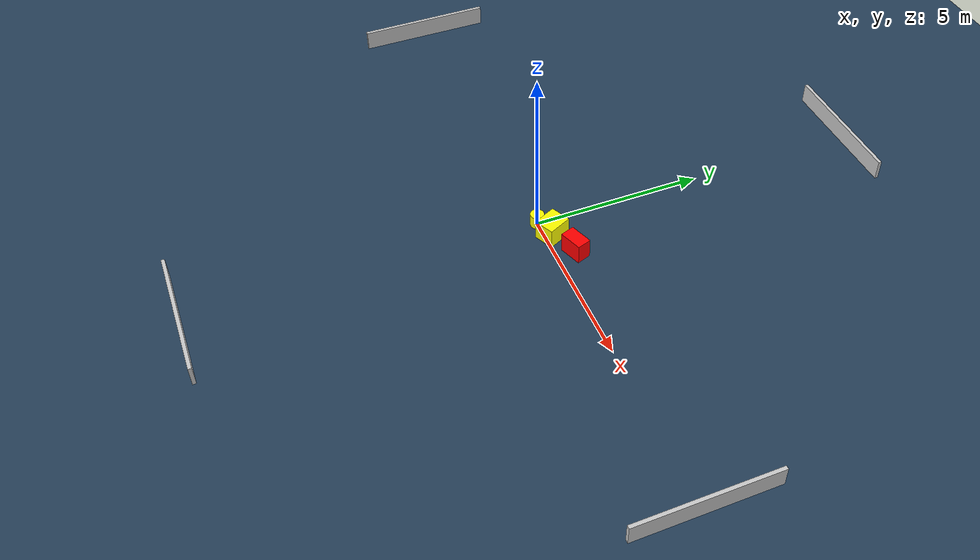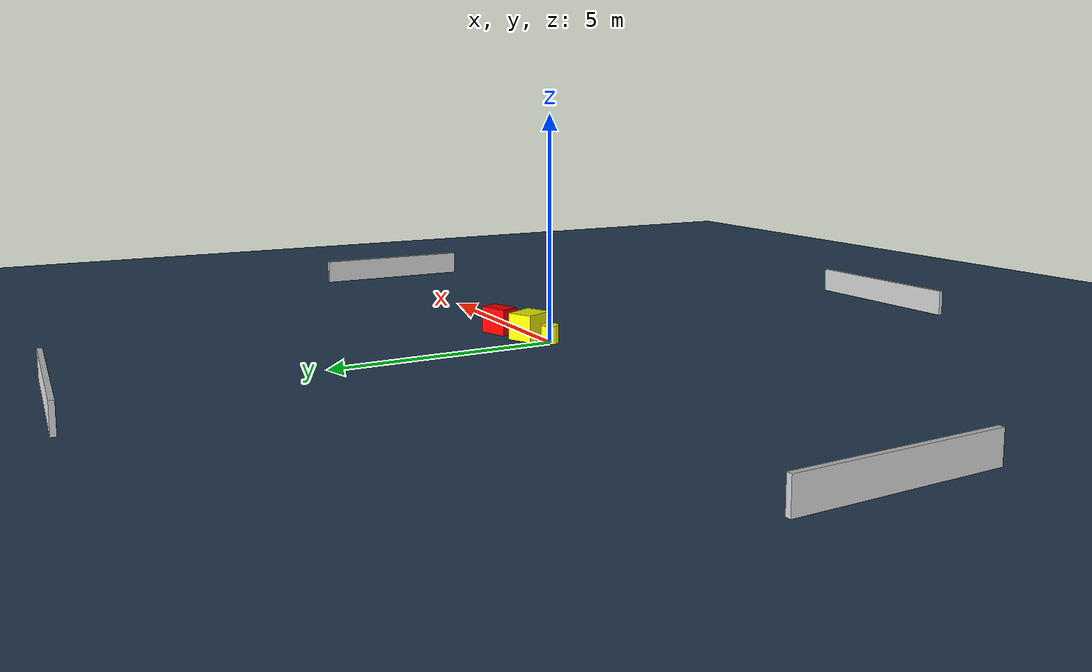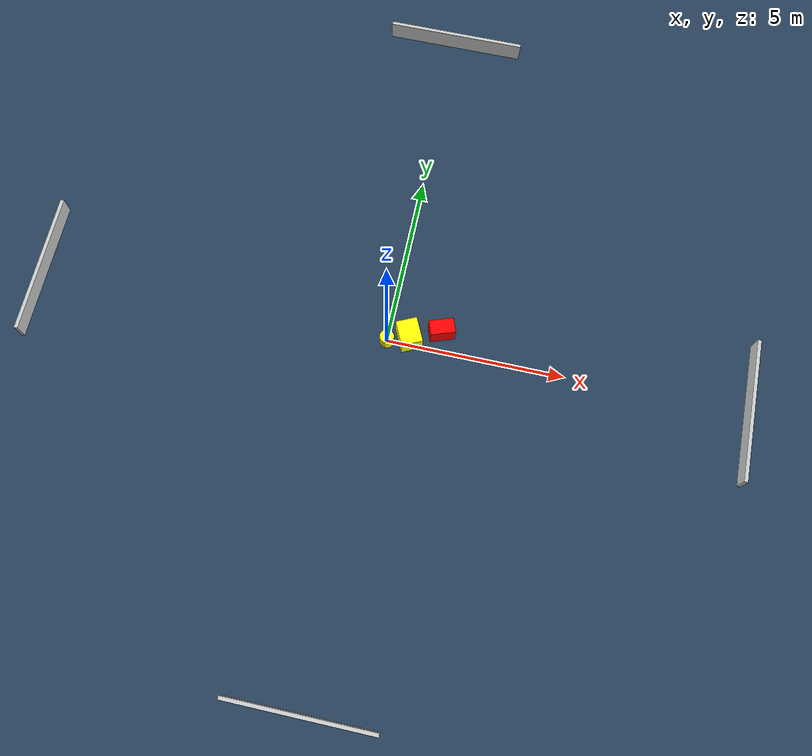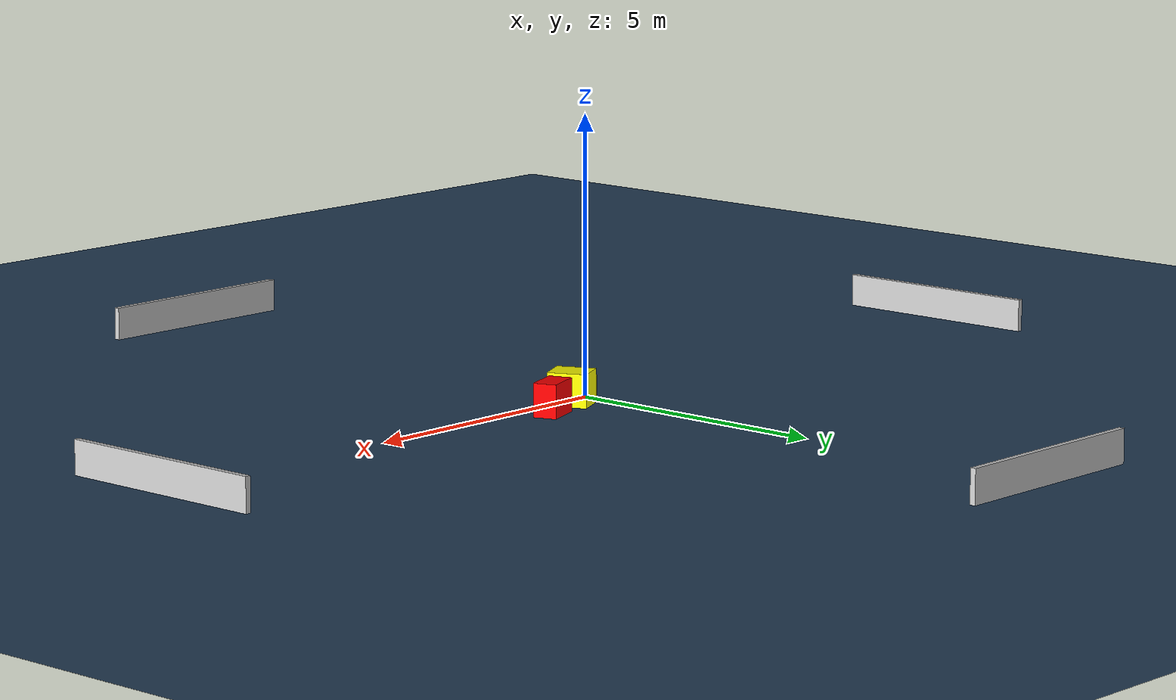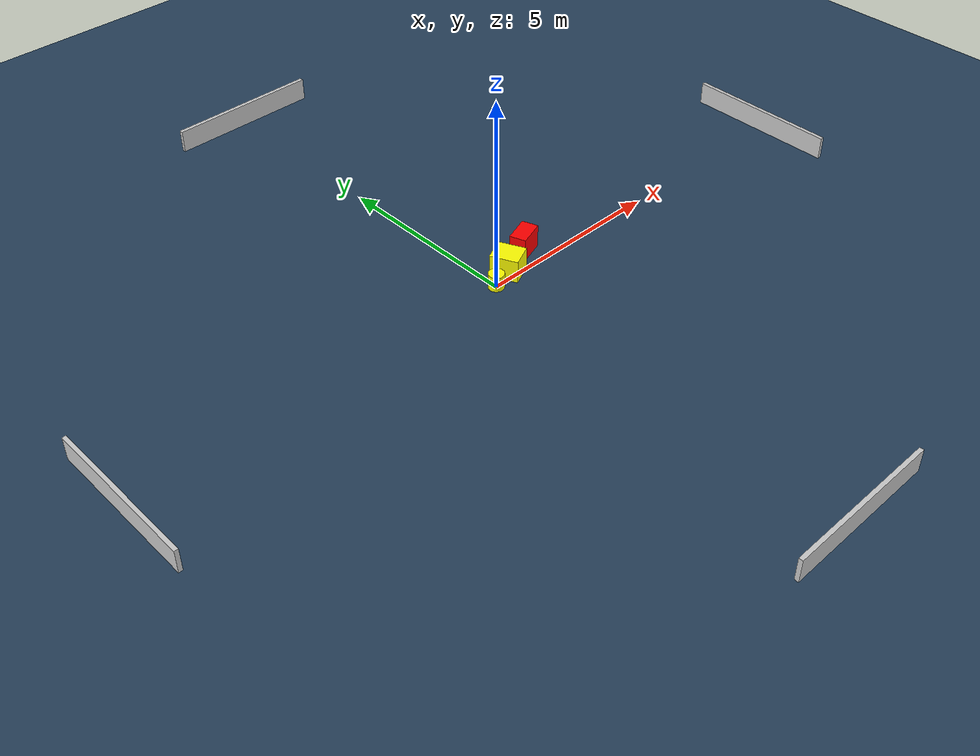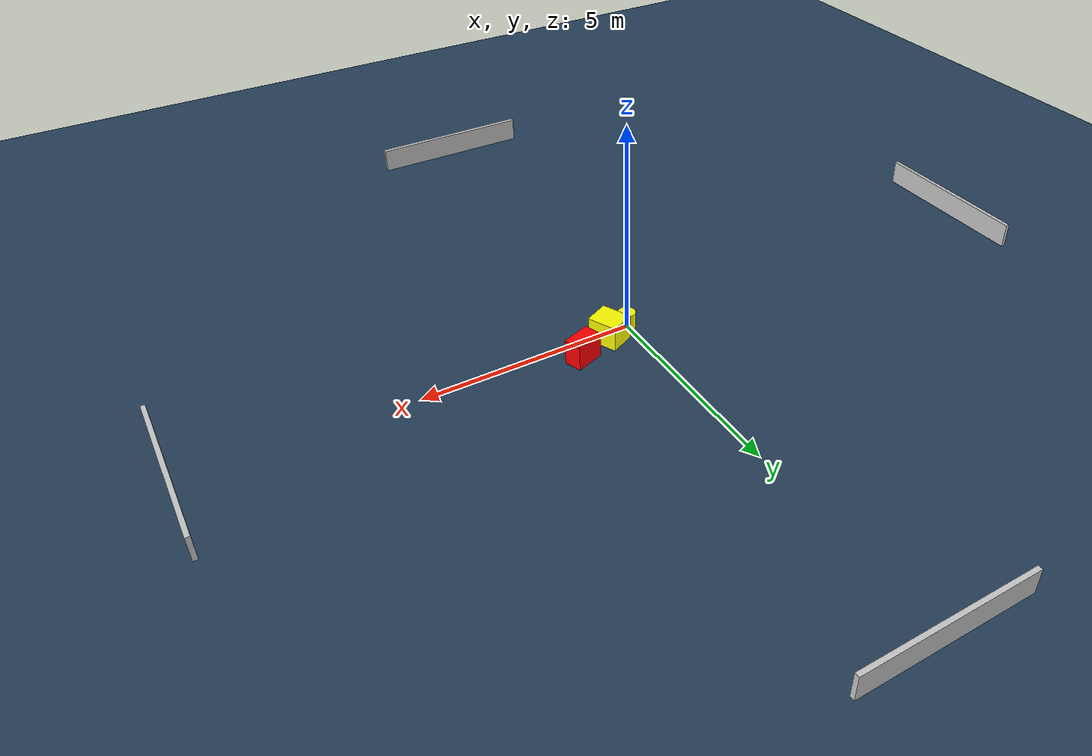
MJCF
<?xml version="1.0" ?>
<mujoco model="generated_environment">
  <option timestep="0.01" integrator="RK4" cone="elliptic"/>
  <default>
    <geom density="1"/>
  </default>
  <asset>
    <texture builtin="gradient" height="3072" name="skybox" rgb1="0.3 0.5 0.7" rgb2="0 0 0" type="skybox" width="512"/>
    <texture builtin="checker" height="300" name="groundplane" rgb1="0.2 0.3 0.4" rgb2="0.1 0.2 0.3" type="2d" width="300"/>
    <material name="groundplane" reflectance="0.2" texrepeat="5 5" texture="groundplane"/>
  </asset>
  <worldbody>
    <light dir="0 0 -1" directional="true" pos="0 0 1.5"/>
    <geom condim="3" friction="0.5 0.005 0.001" material="groundplane" name="floor" pos="0 0 0" size="0 0 0.05" type="plane"/>
    <body name="walls">
      <geom name="wall_1" condim="4" pos="-10.0 0.0 0.3" rgba="0.800000011920929 0.800000011920929 0.800000011920929 1.0" size="0.05 2.0 0.3" type="box"/>
      <geom name="wall_2" condim="4" pos="10.0 0.0 0.3" rgba="0.800000011920929 0.800000011920929 0.800000011920929 1.0" size="0.05 2.0 0.3" type="box"/>
      <geom name="wall_3" condim="4" pos="0.0 -10.0 0.3" rgba="0.800000011920929 0.800000011920929 0.800000011920929 1.0" size="2.0 0.05 0.3" type="box"/>
      <geom name="wall_4" condim="4" pos="0.0 10.0 0.3" rgba="0.800000011920929 0.800000011920929 0.800000011920929 1.0" size="2.0 0.05 0.3" type="box"/>
    </body>
    <body name="robot">
      <joint name="joint_x" type="slide" pos="0 0 0" axis="1 0 0"/>
      <joint name="joint_y" type="slide" pos="0 0 0" axis="0 1 0"/>
      <geom name="robot" type="cylinder" pos="0.0 0.0 0.2" size="0.2 0.2 0.0" mass="5.0" friction="1.0 0.005 0.0001" condim="4" rgba="1.0 1.0 0.0 1.0"/>
    </body>
    <body name="obstacle_1_movable">
      <geom name="obstacle_1_movable" condim="4" pos="0.581333221562855 0.20840753160946238 0.3" euler="0 0 295.21605031686795" friction="0.0 0.005 0.001" rgba="1.0 1.0 0.0 1.0" size="0.3564881297069359 0.301611479718713 0.3" type="box" mass="0.1"/>
      <joint type="free"/>
    </body>
    <body name="obstacle_2_static">
      <geom name="obstacle_2_static" condim="4" pos="1.439069477305069 0.5428344818925436 0.3" euler="0 0 289.40676913869663" friction="0.0 0.005 0.001" rgba="1.0 0.0 0.0 1.0" size="0.20976939724301688 0.3457791845417851 0.3" type="box"/>
    </body>
  </worldbody>
  <actuator>
    <motor name="actuator_x" joint="joint_x" gear="1" ctrlrange="-1 1"/>
    <motor name="actuator_y" joint="joint_y" gear="1" ctrlrange="-1 1"/>
  </actuator>
</mujoco>
